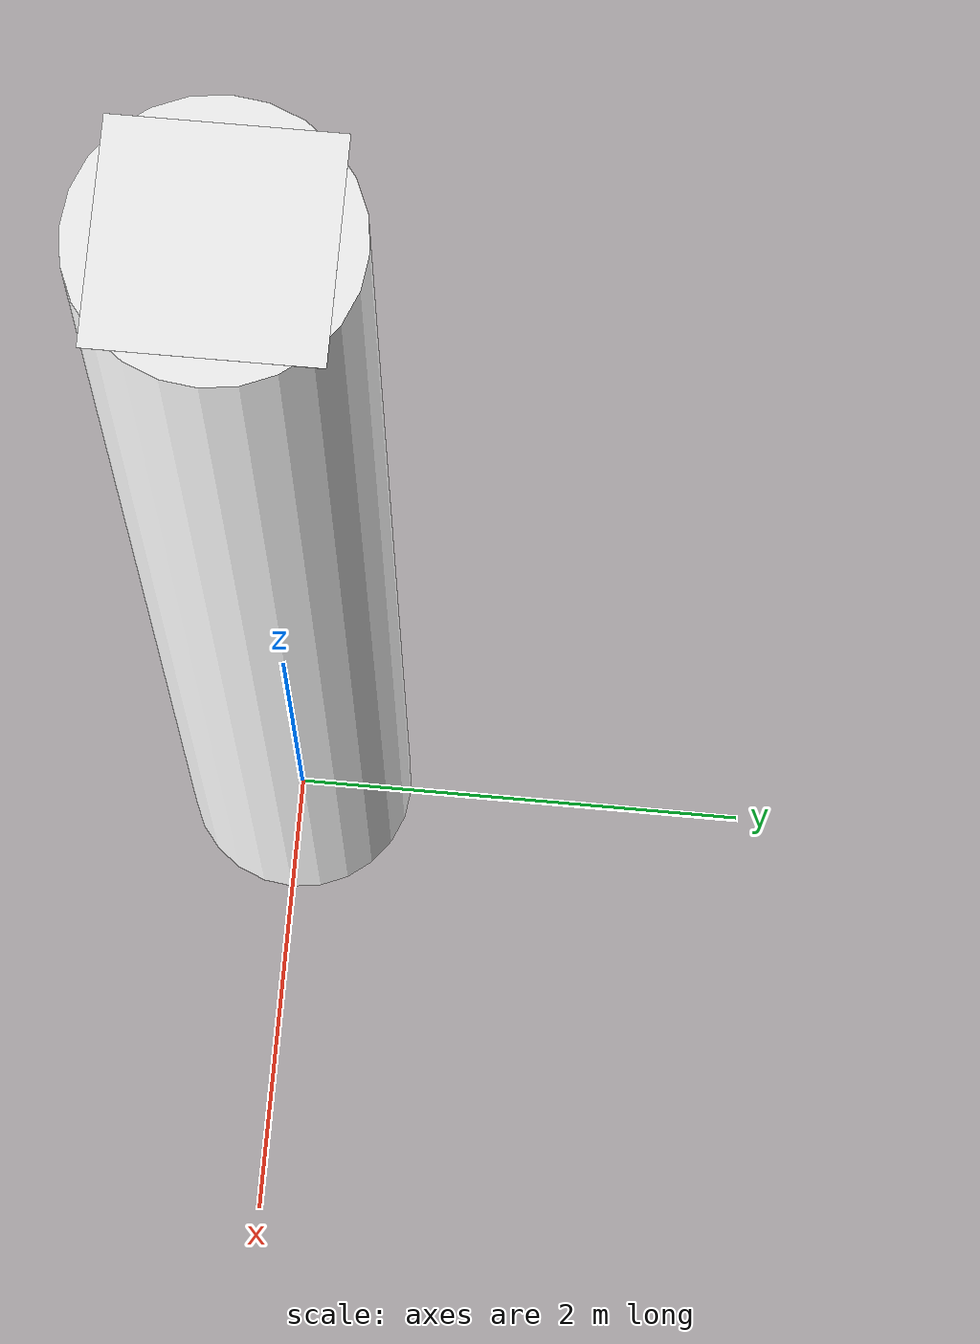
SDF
<?xml version="1.0" ?>
<sdf version="1.8">
  <model name="cylinder_short">
    <static>true</static>
    <link name="link">
      <pose>0 0 3.5 0 0 0</pose>  <!-- Move cylinder up by half its height (7/2 = 3.5m) -->
      <visual name="visual">
        <geometry>
          <cylinder>
            <radius>0.5</radius>
            <length>7.0</length>  <!-- 7m tall -->
          </cylinder>
        </geometry>
        <material>
          <ambient>1 1 1 1</ambient>
          <diffuse>1 1 1 1</diffuse>
          <specular>0.1 0.1 0.1 1</specular>
          <pbr>
            <metal>
              <albedo_map>materials/cylinder_texture.png</albedo_map>
              <roughness>0.8</roughness>
              <metalness>0.1</metalness>
            </metal>
          </pbr>
        </material>
      </visual>

      <!-- ArUco marker visual at the top -->
      <visual name="aruco_marker">
        <pose>0 0 3.5 0 0 0</pose>  <!-- Place at the top of cylinder (at 3.5m from link origin) -->
        <geometry>
          <box>
            <size>0.8 0.8 0.001</size>  <!-- Changed from 0.2 to 0.8 to match cylinder model -->
          </box>
        </geometry>
        <material>
          <ambient>1 1 1 1</ambient>
          <diffuse>1 1 1 1</diffuse>
          <specular>0.1 0.1 0.1 1</specular>
          <pbr>
            <metal>
              <albedo_map>materials/aruco_marker_1.png</albedo_map>
            </metal>
          </pbr>
        </material>
      </visual>

      <collision name="collision">
        <geometry>
          <cylinder>
            <radius>0.5</radius>
            <length>7.0</length>
          </cylinder>
        </geometry>
      </collision>
    </link>
  </model>
</sdf>
